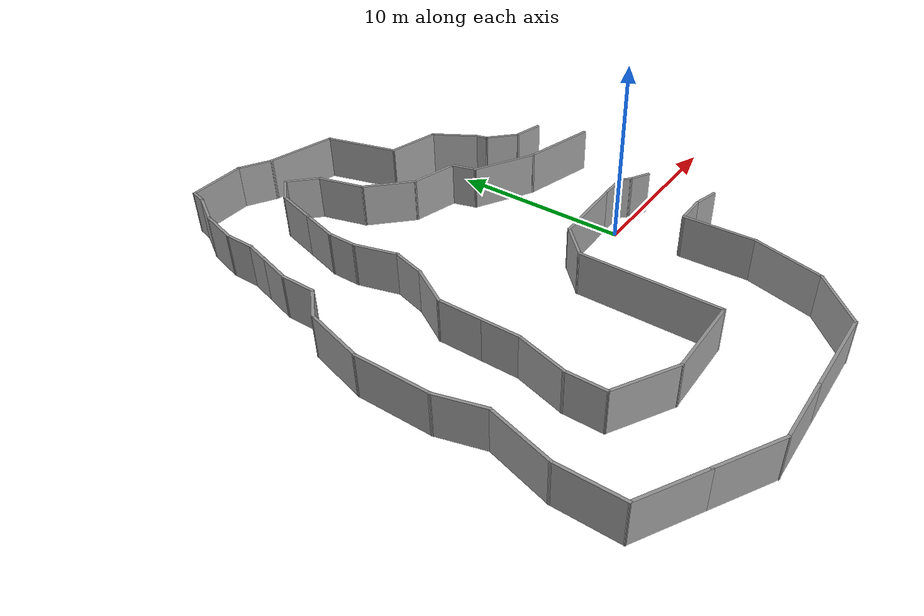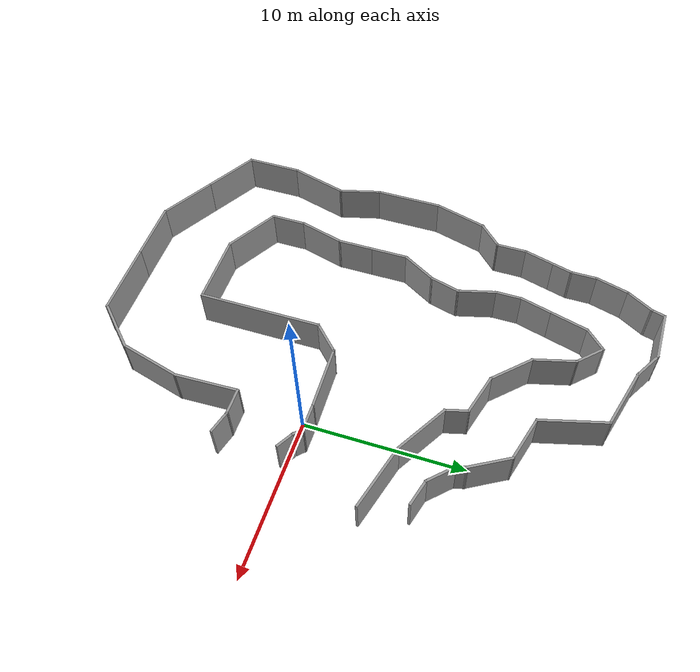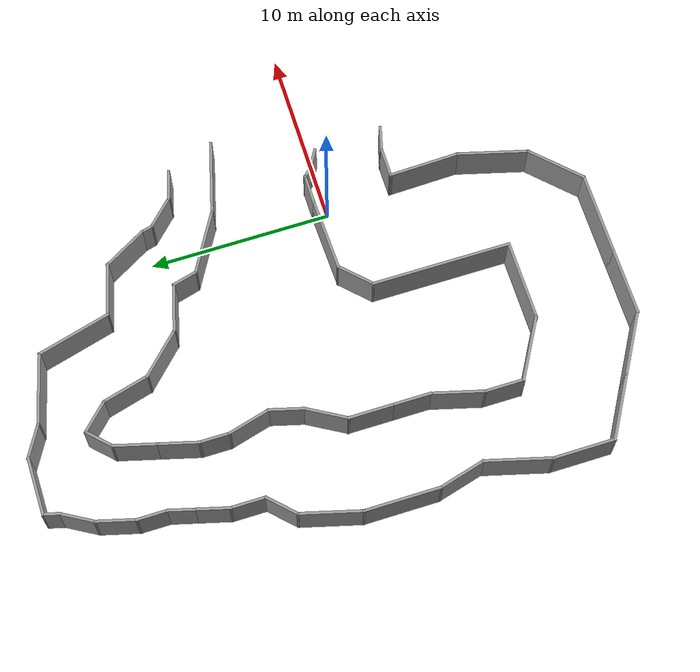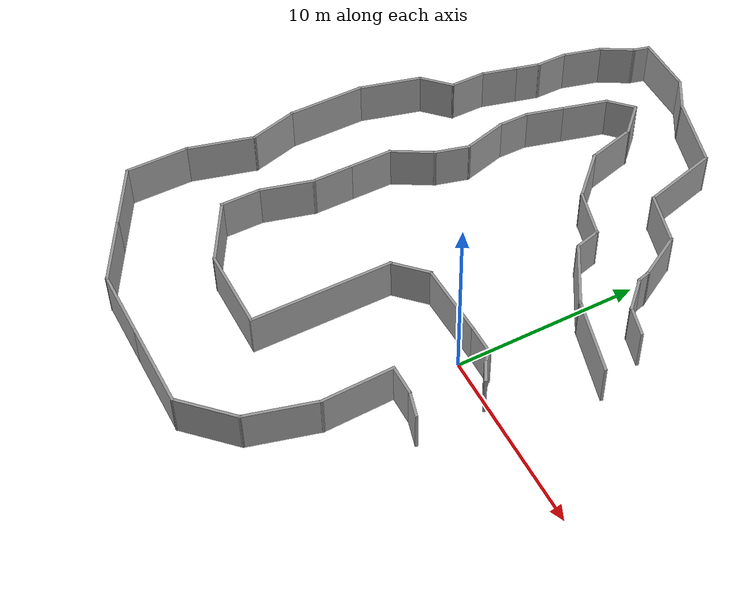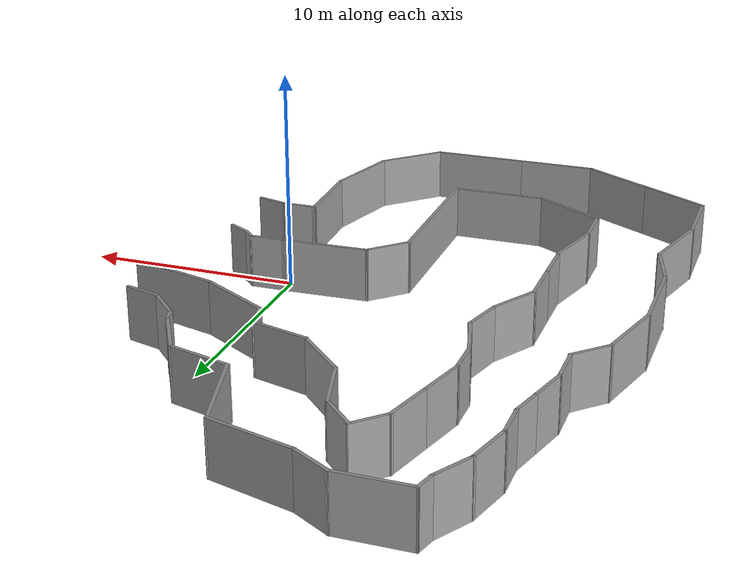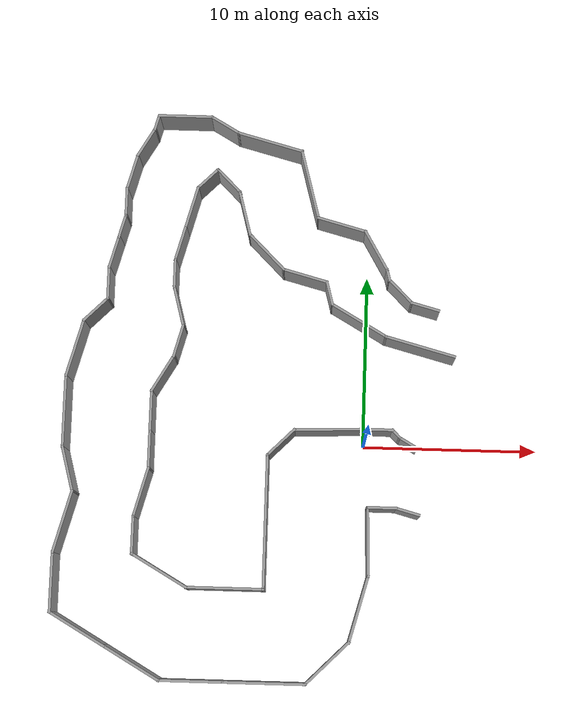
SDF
<sdf version="1.7">
 <model name="racetrackgap">
  <pose>0.224585 2.63558 0 0 -0 0</pose>
  <link name="Wall_100">
   <collision name="Wall_100_Collision">
    <geometry><box><size>2.75 0.15 2.5</size></box></geometry>
    <pose>0 0 1.25 0 -0 0</pose>
   </collision>
   <visual name="Wall_100_Visual">
    <pose>0 0 1.25 0 -0 0</pose>
    <geometry><box><size>2.75 0.15 2.5</size></box></geometry>
    <material>
     <script><uri>file://media/materials/scripts/gazebo.material</uri><name>Gazebo/Grey</name></script>
     <ambient>1 1 1 1</ambient>
    </material>
    <meta><layer>0</layer></meta>
   </visual>
   <pose>-3.86239 6.95839 0 0 -0 2.87979</pose>
  </link>
  <link name="Wall_101">
   <collision name="Wall_101_Collision">
    <geometry><box><size>3 0.15 2.5</size></box></geometry>
    <pose>0 0 1.25 0 -0 0</pose>
   </collision>
   <visual name="Wall_101_Visual">
    <pose>0 0 1.25 0 -0 0</pose>
    <geometry><box><size>3 0.15 2.5</size></box></geometry>
    <material>
     <script><uri>file://media/materials/scripts/gazebo.material</uri><name>Gazebo/Grey</name></script>
     <ambient>1 1 1 1</ambient>
    </material>
    <meta><layer>0</layer></meta>
   </visual>
   <pose>-6.12573 8.30248 0 0 -0 2.35619</pose>
  </link>
  <link name="Wall_102">
   <collision name="Wall_102_Collision">
    <geometry><box><size>2.75 0.15 2.5</size></box></geometry>
    <pose>0 0 1.25 0 -0 0</pose>
   </collision>
   <visual name="Wall_102_Visual">
    <pose>0 0 1.25 0 -0 0</pose>
    <geometry><box><size>2.75 0.15 2.5</size></box></geometry>
    <material>
     <script><uri>file://media/materials/scripts/gazebo.material</uri><name>Gazebo/Grey</name></script>
     <ambient>1 1 1 1</ambient>
    </material>
    <meta><layer>0</layer></meta>
   </visual>
   <pose>-7.46982 10.5658 0 0 -0 1.8326</pose>
  </link>
  <link name="Wall_103">
   <collision name="Wall_103_Collision">
    <geometry><box><size>2 0.15 2.5</size></box></geometry>
    <pose>0 0 1.25 0 -0 0</pose>
   </collision>
   <visual name="Wall_103_Visual">
    <pose>0 0 1.25 0 -0 0</pose>
    <geometry><box><size>2 0.15 2.5</size></box></geometry>
    <material>
     <script><uri>file://media/materials/scripts/gazebo.material</uri><name>Gazebo/Grey</name></script>
     <ambient>1 1 1 1</ambient>
    </material>
    <meta><layer>0</layer></meta>
   </visual>
   <pose>-8.46036 12.4756 0 0 -0 2.35619</pose>
  </link>
  <link name="Wall_104">
   <collision name="Wall_104_Collision">
    <geometry><box><size>1.75 0.15 2.5</size></box></geometry>
    <pose>0 0 1.25 0 -0 0</pose>
   </collision>
   <visual name="Wall_104_Visual">
    <pose>0 0 1.25 0 -0 0</pose>
    <geometry><box><size>1.75 0.15 2.5</size></box></geometry>
    <material>
     <script><uri>file://media/materials/scripts/gazebo.material</uri><name>Gazebo/Grey</name></script>
     <ambient>1 1 1 1</ambient>
    </material>
    <meta><layer>0</layer></meta>
   </visual>
   <pose>-9.68012 12.564 0 0 -0 -2.35619</pose>
  </link>
  <link name="Wall_105">
   <collision name="Wall_105_Collision">
    <geometry><box><size>2.5 0.15 2.5</size></box></geometry>
    <pose>0 0 1.25 0 -0 0</pose>
   </collision>
   <visual name="Wall_105_Visual">
    <pose>0 0 1.25 0 -0 0</pose>
    <geometry><box><size>2.5 0.15 2.5</size></box></geometry>
    <material>
     <script><uri>file://media/materials/scripts/gazebo.material</uri><name>Gazebo/Grey</name></script>
     <ambient>1 1 1 1</ambient>
    </material>
    <meta><layer>0</layer></meta>
   </visual>
   <pose>-10.5499 10.8633 0 0 -0 -1.8326</pose>
  </link>
  <link name="Wall_106">
   <collision name="Wall_106_Collision">
    <geometry><box><size>2.25 0.15 2.5</size></box></geometry>
    <pose>0 0 1.25 0 -0 0</pose>
   </collision>
   <visual name="Wall_106_Visual">
    <pose>0 0 1.25 0 -0 0</pose>
    <geometry><box><size>2.25 0.15 2.5</size></box></geometry>
    <material>
     <script><uri>file://media/materials/scripts/gazebo.material</uri><name>Gazebo/Grey</name></script>
     <ambient>1 1 1 1</ambient>
    </material>
    <meta><layer>0</layer></meta>
   </visual>
   <pose>-11.1258 8.71414 0 0 -0 -1.8326</pose>
  </link>
  <link name="Wall_107">
   <collision name="Wall_107_Collision">
    <geometry><box><size>1.75 0.15 2.5</size></box></geometry>
    <pose>0 0 1.25 0 -0 0</pose>
   </collision>
   <visual name="Wall_107_Visual">
    <pose>0 0 1.25 0 -0 0</pose>
    <geometry><box><size>1.75 0.15 2.5</size></box></geometry>
    <material>
     <script><uri>file://media/materials/scripts/gazebo.material</uri><name>Gazebo/Grey</name></script>
     <ambient>1 1 1 1</ambient>
    </material>
    <meta><layer>0</layer></meta>
   </visual>
   <pose>-11.3975 6.89992 0 0 -0 -1.5708</pose>
  </link>
  <link name="Wall_108">
   <collision name="Wall_108_Collision">
    <geometry><box><size>2.5 0.15 2.5</size></box></geometry>
    <pose>0 0 1.25 0 -0 0</pose>
   </collision>
   <visual name="Wall_108_Visual">
    <pose>0 0 1.25 0 -0 0</pose>
    <geometry><box><size>2.5 0.15 2.5</size></box></geometry>
    <material>
     <script><uri>file://media/materials/scripts/gazebo.material</uri><name>Gazebo/Grey</name></script>
     <ambient>1 1 1 1</ambient>
    </material>
    <meta><layer>0</layer></meta>
   </visual>
   <pose>-11.0934 4.96496 0 0 -0 -1.309</pose>
  </link>
  <link name="Wall_109">
   <collision name="Wall_109_Collision">
    <geometry><box><size>2 0.15 2.5</size></box></geometry>
    <pose>0 0 1.25 0 -0 0</pose>
   </collision>
   <visual name="Wall_109_Visual">
    <pose>0 0 1.25 0 -0 0</pose>
    <geometry><box><size>2 0.15 2.5</size></box></geometry>
    <material>
     <script><uri>file://media/materials/scripts/gazebo.material</uri><name>Gazebo/Grey</name></script>
     <ambient>1 1 1 1</ambient>
    </material>
    <meta><layer>0</layer></meta>
   </visual>
   <pose>-11.0287 2.93651 0 0 -0 -1.8326</pose>
  </link>
  <link name="Wall_110">
   <collision name="Wall_110_Collision">
    <geometry><box><size>2.5 0.15 2.5</size></box></geometry>
    <pose>0 0 1.25 0 -0 0</pose>
   </collision>
   <visual name="Wall_110_Visual">
    <pose>0 0 1.25 0 -0 0</pose>
    <geometry><box><size>2.5 0.15 2.5</size></box></geometry>
    <material>
     <script><uri>file://media/materials/scripts/gazebo.material</uri><name>Gazebo/Grey</name></script>
     <ambient>1 1 1 1</ambient>
    </material>
    <meta><layer>0</layer></meta>
   </visual>
   <pose>-11.8556 1.02545 0 0 -0 -2.0944</pose>
  </link>
  <link name="Wall_111">
   <collision name="Wall_111_Collision">
    <geometry><box><size>2.5 0.15 2.5</size></box></geometry>
    <pose>0 0 1.25 0 -0 0</pose>
   </collision>
   <visual name="Wall_111_Visual">
    <pose>0 0 1.25 0 -0 0</pose>
    <geometry><box><size>2.5 0.15 2.5</size></box></geometry>
    <material>
     <script><uri>file://media/materials/scripts/gazebo.material</uri><name>Gazebo/Grey</name></script>
     <ambient>1 1 1 1</ambient>
    </material>
    <meta><layer>0</layer></meta>
   </visual>
   <pose>-12.4431 -1.16713 0 0 -0 -1.5708</pose>
  </link>
  <link name="Wall_112">
   <collision name="Wall_112_Collision">
    <geometry><box><size>2.25 0.15 2.5</size></box></geometry>
    <pose>0 0 1.25 0 -0 0</pose>
   </collision>
   <visual name="Wall_112_Visual">
    <pose>0 0 1.25 0 -0 0</pose>
    <geometry><box><size>2.25 0.15 2.5</size></box></geometry>
    <material>
     <script><uri>file://media/materials/scripts/gazebo.material</uri><name>Gazebo/Grey</name></script>
     <ambient>1 1 1 1</ambient>
    </material>
    <meta><layer>0</layer></meta>
   </visual>
   <pose>-12.4431 -3.39213 0 0 -0 -1.5708</pose>
  </link>
  <link name="Wall_113">
   <collision name="Wall_113_Collision">
    <geometry><box><size>3 0.15 2.5</size></box></geometry>
    <pose>0 0 1.25 0 -0 0</pose>
   </collision>
   <visual name="Wall_113_Visual">
    <pose>0 0 1.25 0 -0 0</pose>
    <geometry><box><size>3 0.15 2.5</size></box></geometry>
    <material>
     <script><uri>file://media/materials/scripts/gazebo.material</uri><name>Gazebo/Grey</name></script>
     <ambient>1 1 1 1</ambient>
    </material>
    <meta><layer>0</layer></meta>
   </visual>
   <pose>-12.812 -5.81857 0 0 -0 -1.8326</pose>
  </link>
  <link name="Wall_114">
   <collision name="Wall_114_Collision">
    <geometry><box><size>2.25 0.15 2.5</size></box></geometry>
    <pose>0 0 1.25 0 -0 0</pose>
   </collision>
   <visual name="Wall_114_Visual">
    <pose>0 0 1.25 0 -0 0</pose>
    <geometry><box><size>2.25 0.15 2.5</size></box></geometry>
    <material>
     <script><uri>file://media/materials/scripts/gazebo.material</uri><name>Gazebo/Grey</name></script>
     <ambient>1 1 1 1</ambient>
    </material>
    <meta><layer>0</layer></meta>
   </visual>
   <pose>-13.1808 -8.24502 0 0 -0 -1.5708</pose>
  </link>
  <link name="Wall_115">
   <collision name="Wall_115_Collision">
    <geometry><box><size>3.75 0.15 2.5</size></box></geometry>
    <pose>0 0 1.25 0 -0 0</pose>
   </collision>
   <visual name="Wall_115_Visual">
    <pose>0 0 1.25 0 -0 0</pose>
    <geometry><box><size>3.75 0.15 2.5</size></box></geometry>
    <material>
     <script><uri>file://media/materials/scripts/gazebo.material</uri><name>Gazebo/Grey</name></script>
     <ambient>1 1 1 1</ambient>
    </material>
    <meta><layer>0</layer></meta>
   </visual>
   <pose>-11.6219 -10.195 0 0 -0 -0.523599</pose>
  </link>
  <link name="Wall_116">
   <collision name="Wall_116_Collision">
    <geometry><box><size>4.5 0.15 2.5</size></box></geometry>
    <pose>0 0 1.25 0 -0 0</pose>
   </collision>
   <visual name="Wall_116_Visual">
    <pose>0 0 1.25 0 -0 0</pose>
    <geometry><box><size>4.5 0.15 2.5</size></box></geometry>
    <material>
     <script><uri>file://media/materials/scripts/gazebo.material</uri><name>Gazebo/Grey</name></script>
     <ambient>1 1 1 1</ambient>
    </material>
    <meta><layer>0</layer></meta>
   </visual>
   <pose>-7.88808 -11.095 0 0 -0 0</pose>
  </link>
  <link name="Wall_117">
   <collision name="Wall_117_Collision">
    <geometry><box><size>7.75 0.15 2.5</size></box></geometry>
    <pose>0 0 1.25 0 -0 0</pose>
   </collision>
   <visual name="Wall_117_Visual">
    <pose>0 0 1.25 0 -0 0</pose>
    <geometry><box><size>7.75 0.15 2.5</size></box></geometry>
    <material>
     <script><uri>file://media/materials/scripts/gazebo.material</uri><name>Gazebo/Grey</name></script>
     <ambient>1 1 1 1</ambient>
    </material>
    <meta><layer>0</layer></meta>
   </visual>
   <pose>-5.71308 -7.29502 0 0 -0 1.5708</pose>
  </link>
  <link name="Wall_118">
   <collision name="Wall_118_Collision">
    <geometry><box><size>2.25 0.15 2.5</size></box></geometry>
    <pose>0 0 1.25 0 -0 0</pose>
   </collision>
   <visual name="Wall_118_Visual">
    <pose>0 0 1.25 0 -0 0</pose>
    <geometry><box><size>2.25 0.15 2.5</size></box></geometry>
    <material>
     <script><uri>file://media/materials/scripts/gazebo.material</uri><name>Gazebo/Grey</name></script>
     <ambient>1 1 1 1</ambient>
    </material>
    <meta><layer>0</layer></meta>
   </visual>
   <pose>-4.97062 -2.75255 0 0 -0 0.785398</pose>
  </link>
  <link name="Wall_119">
   <collision name="Wall_119_Collision">
    <geometry><box><size>4.13259 0.15 2.5</size></box></geometry>
    <pose>0 0 1.25 0 -0 0</pose>
   </collision>
   <visual name="Wall_119_Visual">
    <pose>0 0 1.25 0 -0 0</pose>
    <geometry><box><size>4.13259 0.15 2.5</size></box></geometry>
    <material>
     <script><uri>file://media/materials/scripts/gazebo.material</uri><name>Gazebo/Grey</name></script>
     <ambient>1 1 1 1</ambient>
    </material>
    <meta><layer>0</layer></meta>
   </visual>
   <pose>-2.23793 -1.945 0 0 -0 0.032696</pose>
  </link>
  <link name="Wall_3">
   <collision name="Wall_3_Collision">
    <geometry><box><size>1.75 0.15 2.5</size></box></geometry>
    <pose>0 0 1.25 0 -0 0</pose>
   </collision>
   <visual name="Wall_3_Visual">
    <pose>0 0 1.25 0 -0 0</pose>
    <geometry><box><size>1.75 0.15 2.5</size></box></geometry>
    <material>
     <script><uri>file://media/materials/scripts/gazebo.material</uri><name>Gazebo/Grey</name></script>
     <ambient>1 1 1 1</ambient>
    </material>
    <meta><layer>0</layer></meta>
   </visual>
   <pose>0.850427 -6.32749 0 0 -0 0</pose>
  </link>
  <link name="Wall_4">
   <collision name="Wall_4_Collision">
    <geometry><box><size>1.5 0.15 2.5</size></box></geometry>
    <pose>0 0 1.25 0 -0 0</pose>
   </collision>
   <visual name="Wall_4_Visual">
    <pose>0 0 1.25 0 -0 0</pose>
    <geometry><box><size>1.5 0.15 2.5</size></box></geometry>
    <material>
     <script><uri>file://media/materials/scripts/gazebo.material</uri><name>Gazebo/Grey</name></script>
     <ambient>1 1 1 1</ambient>
    </material>
    <meta><layer>0</layer></meta>
   </visual>
   <pose>2.30243 -6.50219 0 0 -0 -0.261799</pose>
  </link>
  <link name="Wall_41">
   <collision name="Wall_41_Collision">
    <geometry><box><size>1.75 0.15 2.5</size></box></geometry>
    <pose>0 0 1.25 0 -0 0</pose>
   </collision>
   <visual name="Wall_41_Visual">
    <pose>0 0 1.25 0 -0 0</pose>
    <geometry><box><size>1.75 0.15 2.5</size></box></geometry>
    <material>
     <script><uri>file://media/materials/scripts/gazebo.material</uri><name>Gazebo/Grey</name></script>
     <ambient>1 1 1 1</ambient>
    </material>
    <meta><layer>0</layer></meta>
   </visual>
   <pose>3.08805 5.32367 0 0 -0 2.87979</pose>
  </link>
  <link name="Wall_42">
   <collision name="Wall_42_Collision">
    <geometry><box><size>2 0.15 2.5</size></box></geometry>
    <pose>0 0 1.25 0 -0 0</pose>
   </collision>
   <visual name="Wall_42_Visual">
    <pose>0 0 1.25 0 -0 0</pose>
    <geometry><box><size>2 0.15 2.5</size></box></geometry>
    <material>
     <script><uri>file://media/materials/scripts/gazebo.material</uri><name>Gazebo/Grey</name></script>
     <ambient>1 1 1 1</ambient>
    </material>
    <meta><layer>0</layer></meta>
   </visual>
   <pose>1.66124 6.18479 0 0 -0 2.35619</pose>
  </link>
  <link name="Wall_43">
   <collision name="Wall_43_Collision">
    <geometry><box><size>0.75 0.15 2.5</size></box></geometry>
    <pose>0 0 1.25 0 -0 0</pose>
   </collision>
   <visual name="Wall_43_Visual">
    <pose>0 0 1.25 0 -0 0</pose>
    <geometry><box><size>0.75 0.15 2.5</size></box></geometry>
    <material>
     <script><uri>file://media/materials/scripts/gazebo.material</uri><name>Gazebo/Grey</name></script>
     <ambient>1 1 1 1</ambient>
    </material>
    <meta><layer>0</layer></meta>
   </visual>
   <pose>0.929519 7.12864 0 0 -0 1.8326</pose>
  </link>
  <link name="Wall_44">
   <collision name="Wall_44_Collision">
    <geometry><box><size>2.75 0.15 2.5</size></box></geometry>
    <pose>0 0 1.25 0 -0 0</pose>
   </collision>
   <visual name="Wall_44_Visual">
    <pose>0 0 1.25 0 -0 0</pose>
    <geometry><box><size>2.75 0.15 2.5</size></box></geometry>
    <material>
     <script><uri>file://media/materials/scripts/gazebo.material</uri><name>Gazebo/Grey</name></script>
     <ambient>1 1 1 1</ambient>
    </material>
    <meta><layer>0</layer></meta>
   </visual>
   <pose>0.201873 8.54426 0 0 -0 2.0944</pose>
  </link>
  <link name="Wall_45">
   <collision name="Wall_45_Collision">
    <geometry><box><size>3 0.15 2.5</size></box></geometry>
    <pose>0 0 1.25 0 -0 0</pose>
   </collision>
   <visual name="Wall_45_Visual">
    <pose>0 0 1.25 0 -0 0</pose>
    <geometry><box><size>3 0.15 2.5</size></box></geometry>
    <material>
     <script><uri>file://media/materials/scripts/gazebo.material</uri><name>Gazebo/Grey</name></script>
     <ambient>1 1 1 1</ambient>
    </material>
    <meta><layer>0</layer></meta>
   </visual>
   <pose>-1.82457 10.0389 0 0 -0 2.87979</pose>
  </link>
  <link name="Wall_46">
   <collision name="Wall_46_Collision">
    <geometry><box><size>4.25 0.15 2.5</size></box></geometry>
    <pose>0 0 1.25 0 -0 0</pose>
   </collision>
   <visual name="Wall_46_Visual">
    <pose>0 0 1.25 0 -0 0</pose>
    <geometry><box><size>4.25 0.15 2.5</size></box></geometry>
    <material>
     <script><uri>file://media/materials/scripts/gazebo.material</uri><name>Gazebo/Grey</name></script>
     <ambient>1 1 1 1</ambient>
    </material>
    <meta><layer>0</layer></meta>
   </visual>
   <pose>-3.73159 12.3879 0 0 -0 1.8326</pose>
  </link>
  <link name="Wall_47">
   <collision name="Wall_47_Collision">
    <geometry><box><size>4 0.15 2.5</size></box></geometry>
    <pose>0 0 1.25 0 -0 0</pose>
   </collision>
   <visual name="Wall_47_Visual">
    <pose>0 0 1.25 0 -0 0</pose>
    <geometry><box><size>4 0.15 2.5</size></box></geometry>
    <material>
     <script><uri>file://media/materials/scripts/gazebo.material</uri><name>Gazebo/Grey</name></script>
     <ambient>1 1 1 1</ambient>
    </material>
    <meta><layer>0</layer></meta>
   </visual>
   <pose>-6.12158 14.8662 0 0 -0 2.87979</pose>
  </link>
  <link name="Wall_48">
   <collision name="Wall_48_Collision">
    <geometry><box><size>2 0.15 2.5</size></box></geometry>
    <pose>0 0 1.25 0 -0 0</pose>
   </collision>
   <visual name="Wall_48_Visual">
    <pose>0 0 1.25 0 -0 0</pose>
    <geometry><box><size>2 0.15 2.5</size></box></geometry>
    <material>
     <script><uri>file://media/materials/scripts/gazebo.material</uri><name>Gazebo/Grey</name></script>
     <ambient>1 1 1 1</ambient>
    </material>
    <meta><layer>0</layer></meta>
   </visual>
   <pose>-8.78206 15.827 0 0 -0 2.61799</pose>
  </link>
  <link name="Wall_49">
   <collision name="Wall_49_Collision">
    <geometry><box><size>3.25 0.15 2.5</size></box></geometry>
    <pose>0 0 1.25 0 -0 0</pose>
   </collision>
   <visual name="Wall_49_Visual">
    <pose>0 0 1.25 0 -0 0</pose>
    <geometry><box><size>3.25 0.15 2.5</size></box></geometry>
    <material>
     <script><uri>file://media/materials/scripts/gazebo.material</uri><name>Gazebo/Grey</name></script>
     <ambient>1 1 1 1</ambient>
    </material>
    <meta><layer>0</layer></meta>
   </visual>
   <pose>-11.1331 16.2895 0 0 -0 3.14159</pose>
  </link>
  <link name="Wall_50">
   <collision name="Wall_50_Collision">
    <geometry><box><size>1 0.15 2.5</size></box></geometry>
    <pose>0 0 1.25 0 -0 0</pose>
   </collision>
   <visual name="Wall_50_Visual">
    <pose>0 0 1.25 0 -0 0</pose>
    <geometry><box><size>1 0.15 2.5</size></box></geometry>
    <material>
     <script><uri>file://media/materials/scripts/gazebo.material</uri><name>Gazebo/Grey</name></script>
     <ambient>1 1 1 1</ambient>
    </material>
    <meta><layer>0</layer></meta>
   </visual>
   <pose>-12.7931 15.879 0 0 -0 -1.8326</pose>
  </link>
  <link name="Wall_51">
   <collision name="Wall_51_Collision">
    <geometry><box><size>2 0.15 2.5</size></box></geometry>
    <pose>0 0 1.25 0 -0 0</pose>
   </collision>
   <visual name="Wall_51_Visual">
    <pose>0 0 1.25 0 -0 0</pose>
    <geometry><box><size>2 0.15 2.5</size></box></geometry>
    <material>
     <script><uri>file://media/materials/scripts/gazebo.material</uri><name>Gazebo/Grey</name></script>
     <ambient>1 1 1 1</ambient>
    </material>
    <meta><layer>0</layer></meta>
   </visual>
   <pose>-13.3656 14.6674 0 0 -0 -2.0944</pose>
  </link>
  <link name="Wall_52">
   <collision name="Wall_52_Collision">
    <geometry><box><size>2.25 0.15 2.5</size></box></geometry>
    <pose>0 0 1.25 0 -0 0</pose>
   </collision>
   <visual name="Wall_52_Visual">
    <pose>0 0 1.25 0 -0 0</pose>
    <geometry><box><size>2.25 0.15 2.5</size></box></geometry>
    <material>
     <script><uri>file://media/materials/scripts/gazebo.material</uri><name>Gazebo/Grey</name></script>
     <ambient>1 1 1 1</ambient>
    </material>
    <meta><layer>0</layer></meta>
   </visual>
   <pose>-14.0999 12.8521 0 0 -0 -1.8326</pose>
  </link>
  <link name="Wall_53">
   <collision name="Wall_53_Collision">
    <geometry><box><size>1.75 0.15 2.5</size></box></geometry>
    <pose>0 0 1.25 0 -0 0</pose>
   </collision>
   <visual name="Wall_53_Visual">
    <pose>0 0 1.25 0 -0 0</pose>
    <geometry><box><size>1.75 0.15 2.5</size></box></geometry>
    <material>
     <script><uri>file://media/materials/scripts/gazebo.material</uri><name>Gazebo/Grey</name></script>
     <ambient>1 1 1 1</ambient>
    </material>
    <meta><layer>0</layer></meta>
   </visual>
   <pose>-14.3717 11.0378 0 0 -0 -1.5708</pose>
  </link>
  <link name="Wall_54">
   <collision name="Wall_54_Collision">
    <geometry><box><size>1.5 0.15 2.5</size></box></geometry>
    <pose>0 0 1.25 0 -0 0</pose>
   </collision>
   <visual name="Wall_54_Visual">
    <pose>0 0 1.25 0 -0 0</pose>
    <geometry><box><size>1.5 0.15 2.5</size></box></geometry>
    <material>
     <script><uri>file://media/materials/scripts/gazebo.material</uri><name>Gazebo/Grey</name></script>
     <ambient>1 1 1 1</ambient>
    </material>
    <meta><layer>0</layer></meta>
   </visual>
   <pose>-14.5464 9.58585 0 0 -0 -1.8326</pose>
  </link>
  <link name="Wall_55">
   <collision name="Wall_55_Collision">
    <geometry><box><size>2 0.15 2.5</size></box></geometry>
    <pose>0 0 1.25 0 -0 0</pose>
   </collision>
   <visual name="Wall_55_Visual">
    <pose>0 0 1.25 0 -0 0</pose>
    <geometry><box><size>2 0.15 2.5</size></box></geometry>
    <material>
     <script><uri>file://media/materials/scripts/gazebo.material</uri><name>Gazebo/Grey</name></script>
     <ambient>1 1 1 1</ambient>
    </material>
    <meta><layer>0</layer></meta>
   </visual>
   <pose>-14.9605 8.04036 0 0 -0 -1.8326</pose>
  </link>
  <link name="Wall_56">
   <collision name="Wall_56_Collision">
    <geometry><box><size>2 0.15 2.5</size></box></geometry>
    <pose>0 0 1.25 0 -0 0</pose>
   </collision>
   <visual name="Wall_56_Visual">
    <pose>0 0 1.25 0 -0 0</pose>
    <geometry><box><size>2 0.15 2.5</size></box></geometry>
    <material>
     <script><uri>file://media/materials/scripts/gazebo.material</uri><name>Gazebo/Grey</name></script>
     <ambient>1 1 1 1</ambient>
    </material>
    <meta><layer>0</layer></meta>
   </visual>
   <pose>-15.1999 6.22188 0 0 -0 -1.5708</pose>
  </link>
  <link name="Wall_57">
   <collision name="Wall_57_Collision">
    <geometry><box><size>2 0.15 2.5</size></box></geometry>
    <pose>0 0 1.25 0 -0 0</pose>
   </collision>
   <visual name="Wall_57_Visual">
    <pose>0 0 1.25 0 -0 0</pose>
    <geometry><box><size>2 0.15 2.5</size></box></geometry>
    <material>
     <script><uri>file://media/materials/scripts/gazebo.material</uri><name>Gazebo/Grey</name></script>
     <ambient>1 1 1 1</ambient>
    </material>
    <meta><layer>0</layer></meta>
   </visual>
   <pose>-15.8539 4.64281 0 0 -0 -2.35619</pose>
  </link>
  <link name="Wall_58">
   <collision name="Wall_58_Collision">
    <geometry><box><size>3.5 0.15 2.5</size></box></geometry>
    <pose>0 0 1.25 0 -0 0</pose>
   </collision>
   <visual name="Wall_58_Visual">
    <pose>0 0 1.25 0 -0 0</pose>
    <geometry><box><size>3.5 0.15 2.5</size></box></geometry>
    <material>
     <script><uri>file://media/materials/scripts/gazebo.material</uri><name>Gazebo/Grey</name></script>
     <ambient>1 1 1 1</ambient>
    </material>
    <meta><layer>0</layer></meta>
   </visual>
   <pose>-16.9415 2.37081 0 0 -0 -1.8326</pose>
  </link>
  <link name="Wall_59">
   <collision name="Wall_59_Collision">
    <geometry><box><size>4.25 0.15 2.5</size></box></geometry>
    <pose>0 0 1.25 0 -0 0</pose>
   </collision>
   <visual name="Wall_59_Visual">
    <pose>0 0 1.25 0 -0 0</pose>
    <geometry><box><size>4.25 0.15 2.5</size></box></geometry>
    <material>
     <script><uri>file://media/materials/scripts/gazebo.material</uri><name>Gazebo/Grey</name></script>
     <ambient>1 1 1 1</ambient>
    </material>
    <meta><layer>0</layer></meta>
   </visual>
   <pose>-17.3751 -1.29712 0 0 -0 -1.5708</pose>
  </link>
  <link name="Wall_60">
   <collision name="Wall_60_Collision">
    <geometry><box><size>2.75 0.15 2.5</size></box></geometry>
    <pose>0 0 1.25 0 -0 0</pose>
   </collision>
   <visual name="Wall_60_Visual">
    <pose>0 0 1.25 0 -0 0</pose>
    <geometry><box><size>2.75 0.15 2.5</size></box></geometry>
    <material>
     <script><uri>file://media/materials/scripts/gazebo.material</uri><name>Gazebo/Grey</name></script>
     <ambient>1 1 1 1</ambient>
    </material>
    <meta><layer>0</layer></meta>
   </visual>
   <pose>-17.0386 -4.60282 0 0 -0 -1.309</pose>
  </link>
  <link name="Wall_61">
   <collision name="Wall_61_Collision">
    <geometry><box><size>3.75 0.15 2.5</size></box></geometry>
    <pose>0 0 1.25 0 -0 0</pose>
   </collision>
   <visual name="Wall_61_Visual">
    <pose>0 0 1.25 0 -0 0</pose>
    <geometry><box><size>3.75 0.15 2.5</size></box></geometry>
    <material>
     <script><uri>file://media/materials/scripts/gazebo.material</uri><name>Gazebo/Grey</name></script>
     <ambient>1 1 1 1</ambient>
    </material>
    <meta><layer>0</layer></meta>
   </visual>
   <pose>-17.168 -7.59719 0 0 -0 -1.8326</pose>
  </link>
  <link name="Wall_62">
   <collision name="Wall_62_Collision">
    <geometry><box><size>3.5 0.15 2.5</size></box></geometry>
    <pose>0 0 1.25 0 -0 0</pose>
   </collision>
   <visual name="Wall_62_Visual">
    <pose>0 0 1.25 0 -0 0</pose>
    <geometry><box><size>3.5 0.15 2.5</size></box></geometry>
    <material>
     <script><uri>file://media/materials/scripts/gazebo.material</uri><name>Gazebo/Grey</name></script>
     <ambient>1 1 1 1</ambient>
    </material>
    <meta><layer>0</layer></meta>
   </visual>
   <pose>-17.6339 -11.0109 0 0 -0 -1.5708</pose>
  </link>
  <link name="Wall_63">
   <collision name="Wall_63_Collision">
    <geometry><box><size>3.75 0.15 2.5</size></box></geometry>
    <pose>0 0 1.25 0 -0 0</pose>
   </collision>
   <visual name="Wall_63_Visual">
    <pose>0 0 1.25 0 -0 0</pose>
    <geometry><box><size>3.75 0.15 2.5</size></box></geometry>
    <material>
     <script><uri>file://media/materials/scripts/gazebo.material</uri><name>Gazebo/Grey</name></script>
     <ambient>1 1 1 1</ambient>
    </material>
    <meta><layer>0</layer></meta>
   </visual>
   <pose>-16.075 -13.5859 0 0 -0 -0.523599</pose>
  </link>
  <link name="Wall_64">
   <collision name="Wall_64_Collision">
    <geometry><box><size>3.75 0.15 2.5</size></box></geometry>
    <pose>0 0 1.25 0 -0 0</pose>
   </collision>
   <visual name="Wall_64_Visual">
    <pose>0 0 1.25 0 -0 0</pose>
    <geometry><box><size>3.75 0.15 2.5</size></box></geometry>
    <material>
     <script><uri>file://media/materials/scripts/gazebo.material</uri><name>Gazebo/Grey</name></script>
     <ambient>1 1 1 1</ambient>
    </material>
    <meta><layer>0</layer></meta>
   </visual>
   <pose>-12.9573 -15.3859 0 0 -0 -0.523599</pose>
  </link>
  <link name="Wall_65">
   <collision name="Wall_65_Collision">
    <geometry><box><size>3.75 0.15 2.5</size></box></geometry>
    <pose>0 0 1.25 0 -0 0</pose>
   </collision>
   <visual name="Wall_65_Visual">
    <pose>0 0 1.25 0 -0 0</pose>
    <geometry><box><size>3.75 0.15 2.5</size></box></geometry>
    <material>
     <script><uri>file://media/materials/scripts/gazebo.material</uri><name>Gazebo/Grey</name></script>
     <ambient>1 1 1 1</ambient>
    </material>
    <meta><layer>0</layer></meta>
   </visual>
   <pose>-9.5985 -16.2859 0 0 -0 0</pose>
  </link>
  <link name="Wall_66">
   <collision name="Wall_66_Collision">
    <geometry><box><size>4.75 0.15 2.5</size></box></geometry>
    <pose>0 0 1.25 0 -0 0</pose>
   </collision>
   <visual name="Wall_66_Visual">
    <pose>0 0 1.25 0 -0 0</pose>
    <geometry><box><size>4.75 0.15 2.5</size></box></geometry>
    <material>
     <script><uri>file://media/materials/scripts/gazebo.material</uri><name>Gazebo/Grey</name></script>
     <ambient>1 1 1 1</ambient>
    </material>
    <meta><layer>0</layer></meta>
   </visual>
   <pose>-5.4985 -16.2859 0 0 -0 0</pose>
  </link>
  <link name="Wall_67">
   <collision name="Wall_67_Collision">
    <geometry><box><size>3.5 0.15 2.5</size></box></geometry>
    <pose>0 0 1.25 0 -0 0</pose>
   </collision>
   <visual name="Wall_67_Visual">
    <pose>0 0 1.25 0 -0 0</pose>
    <geometry><box><size>3.5 0.15 2.5</size></box></geometry>
    <material>
     <script><uri>file://media/materials/scripts/gazebo.material</uri><name>Gazebo/Grey</name></script>
     <ambient>1 1 1 1</ambient>
    </material>
    <meta><layer>0</layer></meta>
   </visual>
   <pose>-2.0141 -15.1015 0 0 -0 0.785398</pose>
  </link>
  <link name="Wall_68">
   <collision name="Wall_68_Collision">
    <geometry><box><size>4 0.15 2.5</size></box></geometry>
    <pose>0 0 1.25 0 -0 0</pose>
   </collision>
   <visual name="Wall_68_Visual">
    <pose>0 0 1.25 0 -0 0</pose>
    <geometry><box><size>4 0.15 2.5</size></box></geometry>
    <material>
     <script><uri>file://media/materials/scripts/gazebo.material</uri><name>Gazebo/Grey</name></script>
     <ambient>1 1 1 1</ambient>
    </material>
    <meta><layer>0</layer></meta>
   </visual>
   <pose>-0.331465 -12.0576 0 0 -0 1.309</pose>
  </link>
  <link name="Wall_69">
   <collision name="Wall_69_Collision">
    <geometry><box><size>4.02249 0.15 2.5</size></box></geometry>
    <pose>0 0 1.25 0 -0 0</pose>
   </collision>
   <visual name="Wall_69_Visual">
    <pose>0 0 1.25 0 -0 0</pose>
    <geometry><box><size>4.02249 0.15 2.5</size></box></geometry>
    <material>
     <script><uri>file://media/materials/scripts/gazebo.material</uri><name>Gazebo/Grey</name></script>
     <ambient>1 1 1 1</ambient>
    </material>
    <meta><layer>0</layer></meta>
   </visual>
   <pose>0.108594 -8.26286 0 0 -0 1.60084</pose>
  </link>
  <link name="Wall_71">
   <collision name="Wall_71_Collision">
    <geometry><box><size>1.75 0.15 2.5</size></box></geometry>
    <pose>0 0 1.25 0 -0 0</pose>
   </collision>
   <visual name="Wall_71_Visual">
    <pose>0 0 1.25 0 -0 0</pose>
    <geometry><box><size>1.75 0.15 2.5</size></box></geometry>
    <material>
     <script><uri>file://media/materials/scripts/gazebo.material</uri><name>Gazebo/Grey</name></script>
     <ambient>1 1 1 1</ambient>
    </material>
    <meta><layer>0</layer></meta>
   </visual>
   <pose>0.552304 -1.8799 0 0 -0 0</pose>
  </link>
  <link name="Wall_72">
   <collision name="Wall_72_Collision">
    <geometry><box><size>0.75 0.15 2.5</size></box></geometry>
    <pose>0 0 1.25 0 -0 0</pose>
   </collision>
   <visual name="Wall_72_Visual">
    <pose>0 0 1.25 0 -0 0</pose>
    <geometry><box><size>0.75 0.15 2.5</size></box></geometry>
    <material>
     <script><uri>file://media/materials/scripts/gazebo.material</uri><name>Gazebo/Grey</name></script>
     <ambient>1 1 1 1</ambient>
    </material>
    <meta><layer>0</layer></meta>
   </visual>
   <pose>1.56444 -2.09203 0 0 -0 -0.785398</pose>
  </link>
  <link name="Wall_73">
   <collision name="Wall_73_Collision">
    <geometry><box><size>1.25 0.15 2.5</size></box></geometry>
    <pose>0 0 1.25 0 -0 0</pose>
   </collision>
   <visual name="Wall_73_Visual">
    <pose>0 0 1.25 0 -0 0</pose>
    <geometry><box><size>1.25 0.15 2.5</size></box></geometry>
    <material>
     <script><uri>file://media/materials/scripts/gazebo.material</uri><name>Gazebo/Grey</name></script>
     <ambient>1 1 1 1</ambient>
    </material>
    <meta><layer>0</layer></meta>
   </visual>
   <pose>2.25288 -2.57917 0 0 -0 -0.523599</pose>
  </link>
  <link name="Wall_97">
   <collision name="Wall_97_Collision">
    <geometry><box><size>4.25 0.15 2.5</size></box></geometry>
    <pose>0 0 1.25 0 -0 0</pose>
   </collision>
   <visual name="Wall_97_Visual">
    <pose>0 0 1.25 0 -0 0</pose>
    <geometry><box><size>4.25 0.15 2.5</size></box></geometry>
    <material>
     <script><uri>file://media/materials/scripts/gazebo.material</uri><name>Gazebo/Grey</name></script>
     <ambient>1 1 1 1</ambient>
    </material>
    <meta><layer>0</layer></meta>
   </visual>
   <pose>2.84055 2.98734 0 0 -0 2.87979</pose>
  </link>
  <link name="Wall_98">
   <collision name="Wall_98_Collision">
    <geometry><box><size>3.75 0.15 2.5</size></box></geometry>
    <pose>0 0 1.25 0 -0 0</pose>
   </collision>
   <visual name="Wall_98_Visual">
    <pose>0 0 1.25 0 -0 0</pose>
    <geometry><box><size>3.75 0.15 2.5</size></box></geometry>
    <material>
     <script><uri>file://media/materials/scripts/gazebo.material</uri><name>Gazebo/Grey</name></script>
     <ambient>1 1 1 1</ambient>
    </material>
    <meta><layer>0</layer></meta>
   </visual>
   <pose>-0.698439 4.41792 0 0 -0 2.61799</pose>
  </link>
  <link name="Wall_99">
   <collision name="Wall_99_Collision">
    <geometry><box><size>1.5 0.15 2.5</size></box></geometry>
    <pose>0 0 1.25 0 -0 0</pose>
   </collision>
   <visual name="Wall_99_Visual">
    <pose>0 0 1.25 0 -0 0</pose>
    <geometry><box><size>1.5 0.15 2.5</size></box></geometry>
    <material>
     <script><uri>file://media/materials/scripts/gazebo.material</uri><name>Gazebo/Grey</name></script>
     <ambient>1 1 1 1</ambient>
    </material>
    <meta><layer>0</layer></meta>
   </visual>
   <pose>-2.43199 5.96992 0 0 -0 1.8326</pose>
  </link>
  <static>1</static>
 </model>
</sdf>
